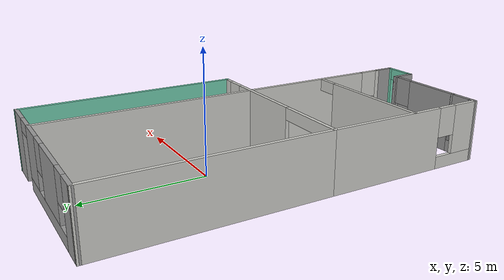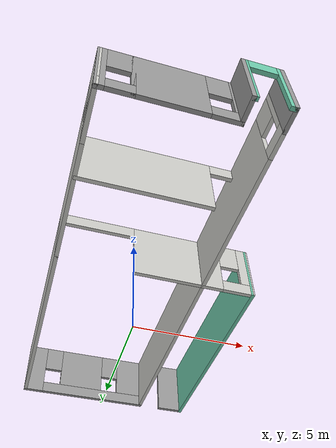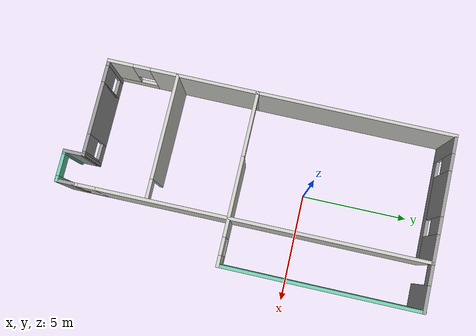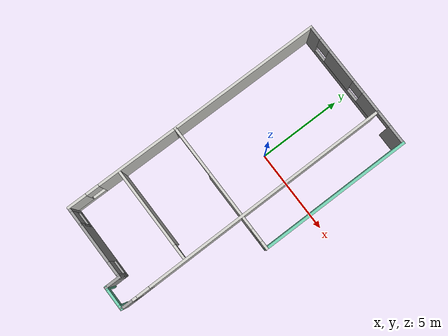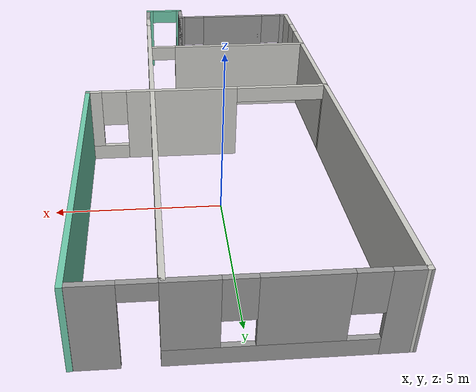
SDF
<?xml version='1.0'?>
<sdf version='1.6'>
  <model name='floor_plan'>
    <pose frame=''>0.139953 -2.45491 0 0 -0 0</pose>
    <link name='Wall_1'>
      <collision name='Wall_1_Collision'>
        <geometry>
          <box>
            <size>9.18001 0.15 2.5</size>
          </box>
        </geometry>
        <pose frame=''>0 0 1.25 0 -0 0</pose>
      </collision>
      <visual name='Wall_1_Visual'>
        <pose frame=''>0 0 1.25 0 -0 0</pose>
        <geometry>
          <box>
            <size>9.18001 0.15 2.5</size>
          </box>
        </geometry>
        <material>
          <script>
            <uri>file://media/materials/scripts/gazebo.material</uri>
            <name>Gazebo/CeilingTiled</name>
          </script>
          <ambient>1 1 1 1</ambient>
        </material>
        <meta>
          <layer>0</layer>
        </meta>
      </visual>
      <pose frame=''>-3.92495 3.8599 0 0 -0 1.5719</pose>
    </link>
    <link name='Wall_11'>
      <pose frame=''>-3.92495 -4.0901 0 0 0 -1.57225</pose>
      <visual name='Wall_11_Visual_0'>
        <pose frame=''>-0.997456 0 1.25 0 -0 0</pose>
        <geometry>
          <box>
            <size>5.0251 0.15 2.5</size>
          </box>
        </geometry>
        <material>
          <script>
            <uri>file://media/materials/scripts/gazebo.material</uri>
            <name>Gazebo/CeilingTiled</name>
          </script>
          <ambient>0.435294 0.796078 0.67451 1</ambient>
        </material>
        <meta>
          <layer>0</layer>
        </meta>
      </visual>
      <collision name='Wall_11_Collision_0'>
        <geometry>
          <box>
            <size>5.0251 0.15 2.5</size>
          </box>
        </geometry>
        <pose frame=''>-0.997456 0 1.25 0 -0 0</pose>
      </collision>
      <visual name='Wall_11_Visual_1'>
        <pose frame=''>2.51255 0 0.25 0 -0 0</pose>
        <geometry>
          <box>
            <size>1.99491 0.15 0.5</size>
          </box>
        </geometry>
        <material>
          <script>
            <uri>file://media/materials/scripts/gazebo.material</uri>
            <name>Gazebo/CeilingTiled</name>
          </script>
          <ambient>0.435294 0.796078 0.67451 1</ambient>
        </material>
        <meta>
          <layer>0</layer>
        </meta>
      </visual>
      <collision name='Wall_11_Collision_1'>
        <geometry>
          <box>
            <size>1.99491 0.15 0.5</size>
          </box>
        </geometry>
        <pose frame=''>2.51255 0 0.25 0 -0 0</pose>
      </collision>
      <visual name='Wall_11_Visual_2'>
        <pose frame=''>2.91255 0 1.5 0 -0 0</pose>
        <geometry>
          <box>
            <size>1.19491 0.15 2</size>
          </box>
        </geometry>
        <material>
          <script>
            <uri>file://media/materials/scripts/gazebo.material</uri>
            <name>Gazebo/CeilingTiled</name>
          </script>
          <ambient>0.435294 0.796078 0.67451 1</ambient>
        </material>
        <meta>
          <layer>0</layer>
        </meta>
      </visual>
      <collision name='Wall_11_Collision_2'>
        <geometry>
          <box>
            <size>1.19491 0.15 2</size>
          </box>
        </geometry>
        <pose frame=''>2.91255 0 1.5 0 -0 0</pose>
      </collision>
      <visual name='Wall_11_Visual_3'>
        <pose frame=''>1.91509 0 1.9 0 -0 0</pose>
        <geometry>
          <box>
            <size>0.8 0.15 1.2</size>
          </box>
        </geometry>
        <material>
          <script>
            <uri>file://media/materials/scripts/gazebo.material</uri>
            <name>Gazebo/CeilingTiled</name>
          </script>
          <ambient>0.435294 0.796078 0.67451 1</ambient>
        </material>
        <meta>
          <layer>0</layer>
        </meta>
      </visual>
      <collision name='Wall_11_Collision_3'>
        <geometry>
          <box>
            <size>0.8 0.15 1.2</size>
          </box>
        </geometry>
        <pose frame=''>1.91509 0 1.9 0 -0 0</pose>
      </collision>
    </link>
    <link name='Wall_24'>
      <pose frame=''>-3.37995 -7.5251 0 0 -0 0</pose>
      <visual name='Wall_24_Visual_0'>
        <pose frame=''>-0.4625 0 1.25 0 -0 0</pose>
        <geometry>
          <box>
            <size>0.325 0.15 2.5</size>
          </box>
        </geometry>
        <material>
          <script>
            <uri>file://media/materials/scripts/gazebo.material</uri>
            <name>Gazebo/Grey</name>
          </script>
          <ambient>1 1 1 1</ambient>
        </material>
        <meta>
          <layer>0</layer>
        </meta>
      </visual>
      <collision name='Wall_24_Collision_0'>
        <geometry>
          <box>
            <size>0.325 0.15 2.5</size>
          </box>
        </geometry>
        <pose frame=''>-0.4625 0 1.25 0 -0 0</pose>
      </collision>
      <visual name='Wall_24_Visual_1'>
        <pose frame=''>0.1625 0 0.25 0 -0 0</pose>
        <geometry>
          <box>
            <size>0.925 0.15 0.5</size>
          </box>
        </geometry>
        <material>
          <script>
            <uri>file://media/materials/scripts/gazebo.material</uri>
            <name>Gazebo/Grey</name>
          </script>
          <ambient>1 1 1 1</ambient>
        </material>
        <meta>
          <layer>0</layer>
        </meta>
      </visual>
      <collision name='Wall_24_Collision_1'>
        <geometry>
          <box>
            <size>0.925 0.15 0.5</size>
          </box>
        </geometry>
        <pose frame=''>0.1625 0 0.25 0 -0 0</pose>
      </collision>
      <visual name='Wall_24_Visual_2'>
        <pose frame=''>0.5625 0 1.5 0 -0 0</pose>
        <geometry>
          <box>
            <size>0.125 0.15 2</size>
          </box>
        </geometry>
        <material>
          <script>
            <uri>file://media/materials/scripts/gazebo.material</uri>
            <name>Gazebo/Grey</name>
          </script>
          <ambient>1 1 1 1</ambient>
        </material>
        <meta>
          <layer>0</layer>
        </meta>
      </visual>
      <collision name='Wall_24_Collision_2'>
        <geometry>
          <box>
            <size>0.125 0.15 2</size>
          </box>
        </geometry>
        <pose frame=''>0.5625 0 1.5 0 -0 0</pose>
      </collision>
      <visual name='Wall_24_Visual_3'>
        <pose frame=''>0.1 0 1.9 0 -0 0</pose>
        <geometry>
          <box>
            <size>0.8 0.15 1.2</size>
          </box>
        </geometry>
        <material>
          <script>
            <uri>file://media/materials/scripts/gazebo.material</uri>
            <name>Gazebo/Grey</name>
          </script>
          <ambient>1 1 1 1</ambient>
        </material>
        <meta>
          <layer>0</layer>
        </meta>
      </visual>
      <collision name='Wall_24_Collision_3'>
        <geometry>
          <box>
            <size>0.8 0.15 1.2</size>
          </box>
        </geometry>
        <pose frame=''>0.1 0 1.9 0 -0 0</pose>
      </collision>
    </link>
    <link name='Wall_27'>
      <pose frame=''>-1.15495 -7.5251 0 0 -0 0</pose>
      <visual name='Wall_27_Visual_0'>
        <pose frame=''>-0.5175 0 1.25 0 -0 0</pose>
        <geometry>
          <box>
            <size>2.465 0.15 2.5</size>
          </box>
        </geometry>
        <material>
          <script>
            <uri>file://media/materials/scripts/gazebo.material</uri>
            <name>Gazebo/Grey</name>
          </script>
          <ambient>1 1 1 1</ambient>
        </material>
        <meta>
          <layer>0</layer>
        </meta>
      </visual>
      <collision name='Wall_27_Collision_0'>
        <geometry>
          <box>
            <size>2.465 0.15 2.5</size>
          </box>
        </geometry>
        <pose frame=''>-0.5175 0 1.25 0 -0 0</pose>
      </collision>
      <visual name='Wall_27_Visual_1'>
        <pose frame=''>1.2325 0 0.25 0 -0 0</pose>
        <geometry>
          <box>
            <size>1.035 0.15 0.5</size>
          </box>
        </geometry>
        <material>
          <script>
            <uri>file://media/materials/scripts/gazebo.material</uri>
            <name>Gazebo/Grey</name>
          </script>
          <ambient>1 1 1 1</ambient>
        </material>
        <meta>
          <layer>0</layer>
        </meta>
      </visual>
      <collision name='Wall_27_Collision_1'>
        <geometry>
          <box>
            <size>1.035 0.15 0.5</size>
          </box>
        </geometry>
        <pose frame=''>1.2325 0 0.25 0 -0 0</pose>
      </collision>
      <visual name='Wall_27_Visual_2'>
        <pose frame=''>1.6325 0 1.5 0 -0 0</pose>
        <geometry>
          <box>
            <size>0.235 0.15 2</size>
          </box>
        </geometry>
        <material>
          <script>
            <uri>file://media/materials/scripts/gazebo.material</uri>
            <name>Gazebo/Grey</name>
          </script>
          <ambient>1 1 1 1</ambient>
        </material>
        <meta>
          <layer>0</layer>
        </meta>
      </visual>
      <collision name='Wall_27_Collision_2'>
        <geometry>
          <box>
            <size>0.235 0.15 2</size>
          </box>
        </geometry>
        <pose frame=''>1.6325 0 1.5 0 -0 0</pose>
      </collision>
      <visual name='Wall_27_Visual_3'>
        <pose frame=''>1.115 0 1.9 0 -0 0</pose>
        <geometry>
          <box>
            <size>0.8 0.15 1.2</size>
          </box>
        </geometry>
        <material>
          <script>
            <uri>file://media/materials/scripts/gazebo.material</uri>
            <name>Gazebo/Grey</name>
          </script>
          <ambient>1 1 1 1</ambient>
        </material>
        <meta>
          <layer>0</layer>
        </meta>
      </visual>
      <collision name='Wall_27_Collision_3'>
        <geometry>
          <box>
            <size>0.8 0.15 1.2</size>
          </box>
        </geometry>
        <pose frame=''>1.115 0 1.9 0 -0 0</pose>
      </collision>
    </link>
    <link name='Wall_28'>
      <collision name='Wall_28_Collision'>
        <geometry>
          <box>
            <size>1 0.15 2.5</size>
          </box>
        </geometry>
        <pose frame=''>0 0 1.25 0 -0 0</pose>
      </collision>
      <visual name='Wall_28_Visual'>
        <pose frame=''>0 0 1.25 0 -0 0</pose>
        <geometry>
          <box>
            <size>1 0.15 2.5</size>
          </box>
        </geometry>
        <material>
          <script>
            <uri>file://media/materials/scripts/gazebo.material</uri>
            <name>Gazebo/Grey</name>
          </script>
          <ambient>1 1 1 1</ambient>
        </material>
        <meta>
          <layer>0</layer>
        </meta>
      </visual>
      <pose frame=''>0.520047 -7.9501 0 0 0 -1.5708</pose>
    </link>
    <link name='Wall_29'>
      <pose frame=''>1.19505 -8.37509 0 0 -0 0</pose>
      <visual name='Wall_29_Visual_0'>
        <pose frame=''>-0.635 0 1.25 0 -0 0</pose>
        <geometry>
          <box>
            <size>0.23 0.15 2.5</size>
          </box>
        </geometry>
        <material>
          <script>
            <uri>file://media/materials/scripts/gazebo.material</uri>
            <name>Gazebo/Grey</name>
          </script>
          <ambient>0.435294 0.796078 0.67451 1</ambient>
        </material>
        <meta>
          <layer>0</layer>
        </meta>
      </visual>
      <collision name='Wall_29_Collision_0'>
        <geometry>
          <box>
            <size>0.23 0.15 2.5</size>
          </box>
        </geometry>
        <pose frame=''>-0.635 0 1.25 0 -0 0</pose>
      </collision>
      <visual name='Wall_29_Visual_1'>
        <pose frame=''>0.61 0 1.25 0 -0 0</pose>
        <geometry>
          <box>
            <size>0.28 0.15 2.5</size>
          </box>
        </geometry>
        <material>
          <script>
            <uri>file://media/materials/scripts/gazebo.material</uri>
            <name>Gazebo/Grey</name>
          </script>
          <ambient>0.435294 0.796078 0.67451 1</ambient>
        </material>
        <meta>
          <layer>0</layer>
        </meta>
      </visual>
      <collision name='Wall_29_Collision_1'>
        <geometry>
          <box>
            <size>0.28 0.15 2.5</size>
          </box>
        </geometry>
        <pose frame=''>0.61 0 1.25 0 -0 0</pose>
      </collision>
      <visual name='Wall_29_Visual_2'>
        <pose frame=''>-0.025 0 2.25 0 -0 0</pose>
        <geometry>
          <box>
            <size>0.99 0.15 0.5</size>
          </box>
        </geometry>
        <material>
          <script>
            <uri>file://media/materials/scripts/gazebo.material</uri>
            <name>Gazebo/Grey</name>
          </script>
          <ambient>0.435294 0.796078 0.67451 1</ambient>
        </material>
        <meta>
          <layer>0</layer>
        </meta>
      </visual>
      <collision name='Wall_29_Collision_2'>
        <geometry>
          <box>
            <size>0.99 0.15 0.5</size>
          </box>
        </geometry>
        <pose frame=''>-0.025 0 2.25 0 -0 0</pose>
      </collision>
    </link>
    <link name='Wall_3'>
      <pose frame=''>0.005047 -0.645095 0 0 -0 0</pose>
      <visual name='Wall_3_Visual_0'>
        <pose frame=''>-3.9325 0 1.25 0 -0 0</pose>
        <geometry>
          <box>
            <size>0.135 0.15 2.5</size>
          </box>
        </geometry>
        <material>
          <script>
            <uri>file://media/materials/scripts/gazebo.material</uri>
            <name>Gazebo/CeilingTiled</name>
          </script>
          <ambient>1 1 1 1</ambient>
        </material>
        <meta>
          <layer>0</layer>
        </meta>
      </visual>
      <collision name='Wall_3_Collision_0'>
        <geometry>
          <box>
            <size>0.135 0.15 2.5</size>
          </box>
        </geometry>
        <pose frame=''>-3.9325 0 1.25 0 -0 0</pose>
      </collision>
      <visual name='Wall_3_Visual_1'>
        <pose frame=''>0.855 0 1.25 0 -0 0</pose>
        <geometry>
          <box>
            <size>3.64 0.15 2.5</size>
          </box>
        </geometry>
        <material>
          <script>
            <uri>file://media/materials/scripts/gazebo.material</uri>
            <name>Gazebo/CeilingTiled</name>
          </script>
          <ambient>1 1 1 1</ambient>
        </material>
        <meta>
          <layer>0</layer>
        </meta>
      </visual>
      <collision name='Wall_3_Collision_1'>
        <geometry>
          <box>
            <size>3.64 0.15 2.5</size>
          </box>
        </geometry>
        <pose frame=''>0.855 0 1.25 0 -0 0</pose>
      </collision>
      <visual name='Wall_3_Visual_2'>
        <pose frame=''>3.3375 0 0.25 0 -0 0</pose>
        <geometry>
          <box>
            <size>1.325 0.15 0.5</size>
          </box>
        </geometry>
        <material>
          <script>
            <uri>file://media/materials/scripts/gazebo.material</uri>
            <name>Gazebo/CeilingTiled</name>
          </script>
          <ambient>1 1 1 1</ambient>
        </material>
        <meta>
          <layer>0</layer>
        </meta>
      </visual>
      <collision name='Wall_3_Collision_2'>
        <geometry>
          <box>
            <size>1.325 0.15 0.5</size>
          </box>
        </geometry>
        <pose frame=''>3.3375 0 0.25 0 -0 0</pose>
      </collision>
      <visual name='Wall_3_Visual_3'>
        <pose frame=''>3.7375 0 1.5 0 -0 0</pose>
        <geometry>
          <box>
            <size>0.525 0.15 2</size>
          </box>
        </geometry>
        <material>
          <script>
            <uri>file://media/materials/scripts/gazebo.material</uri>
            <name>Gazebo/CeilingTiled</name>
          </script>
          <ambient>1 1 1 1</ambient>
        </material>
        <meta>
          <layer>0</layer>
        </meta>
      </visual>
      <collision name='Wall_3_Collision_3'>
        <geometry>
          <box>
            <size>0.525 0.15 2</size>
          </box>
        </geometry>
        <pose frame=''>3.7375 0 1.5 0 -0 0</pose>
      </collision>
      <visual name='Wall_3_Visual_4'>
        <pose frame=''>3.075 0 1.9 0 -0 0</pose>
        <geometry>
          <box>
            <size>0.8 0.15 1.2</size>
          </box>
        </geometry>
        <material>
          <script>
            <uri>file://media/materials/scripts/gazebo.material</uri>
            <name>Gazebo/CeilingTiled</name>
          </script>
          <ambient>1 1 1 1</ambient>
        </material>
        <meta>
          <layer>0</layer>
        </meta>
      </visual>
      <collision name='Wall_3_Collision_4'>
        <geometry>
          <box>
            <size>0.8 0.15 1.2</size>
          </box>
        </geometry>
        <pose frame=''>3.075 0 1.9 0 -0 0</pose>
      </collision>
      <visual name='Wall_3_Visual_5'>
        <pose frame=''>-2.415 0 2.25 0 -0 0</pose>
        <geometry>
          <box>
            <size>2.9 0.15 0.5</size>
          </box>
        </geometry>
        <material>
          <script>
            <uri>file://media/materials/scripts/gazebo.material</uri>
            <name>Gazebo/CeilingTiled</name>
          </script>
          <ambient>1 1 1 1</ambient>
        </material>
        <meta>
          <layer>0</layer>
        </meta>
      </visual>
      <collision name='Wall_3_Collision_5'>
        <geometry>
          <box>
            <size>2.9 0.15 0.5</size>
          </box>
        </geometry>
        <pose frame=''>-2.415 0 2.25 0 -0 0</pose>
      </collision>
    </link>
    <link name='Wall_30'>
      <collision name='Wall_30_Collision'>
        <geometry>
          <box>
            <size>0.91 0.15 2.5</size>
          </box>
        </geometry>
        <pose frame=''>0 0 1.25 0 -0 0</pose>
      </collision>
      <visual name='Wall_30_Visual'>
        <pose frame=''>0 0 1.25 0 -0 0</pose>
        <geometry>
          <box>
            <size>0.91 0.15 2.5</size>
          </box>
        </geometry>
        <material>
          <script>
            <uri>file://media/materials/scripts/gazebo.material</uri>
            <name>Gazebo/Grey</name>
          </script>
          <ambient>1 1 1 1</ambient>
        </material>
        <meta>
          <layer>0</layer>
        </meta>
      </visual>
      <pose frame=''>1.87005 -7.9951 0 0 -0 1.5708</pose>
    </link>
    <link name='Wall_32'>
      <pose frame=''>-1.08995 -4.3251 0 0 -0 0</pose>
      <visual name='Wall_32_Visual_0'>
        <pose frame=''>-0.4375 0 1.25 0 -0 0</pose>
        <geometry>
          <box>
            <size>4.875 0.15 2.5</size>
          </box>
        </geometry>
        <material>
          <script>
            <uri>file://media/materials/scripts/gazebo.material</uri>
            <name>Gazebo/CeilingTiled</name>
          </script>
          <ambient>1 1 1 1</ambient>
        </material>
        <meta>
          <layer>0</layer>
        </meta>
      </visual>
      <collision name='Wall_32_Collision_0'>
        <geometry>
          <box>
            <size>4.875 0.15 2.5</size>
          </box>
        </geometry>
        <pose frame=''>-0.4375 0 1.25 0 -0 0</pose>
      </collision>
      <visual name='Wall_32_Visual_1'>
        <pose frame=''>2.4375 0 2.25 0 -0 0</pose>
        <geometry>
          <box>
            <size>0.875 0.15 0.5</size>
          </box>
        </geometry>
        <material>
          <script>
            <uri>file://media/materials/scripts/gazebo.material</uri>
            <name>Gazebo/CeilingTiled</name>
          </script>
          <ambient>1 1 1 1</ambient>
        </material>
        <meta>
          <layer>0</layer>
        </meta>
      </visual>
      <collision name='Wall_32_Collision_1'>
        <geometry>
          <box>
            <size>0.875 0.15 0.5</size>
          </box>
        </geometry>
        <pose frame=''>2.4375 0 2.25 0 -0 0</pose>
      </collision>
    </link>
    <link name='Wall_5'>
      <collision name='Wall_5_Collision'>
        <geometry>
          <box>
            <size>9.16001 0.15 2.5</size>
          </box>
        </geometry>
        <pose frame=''>0 0 1.25 0 -0 0</pose>
      </collision>
      <visual name='Wall_5_Visual'>
        <pose frame=''>0 0 1.25 0 -0 0</pose>
        <geometry>
          <box>
            <size>9.16001 0.15 2.5</size>
          </box>
        </geometry>
        <material>
          <script>
            <uri>file://media/materials/scripts/gazebo.material</uri>
            <name>Gazebo/Grey</name>
          </script>
          <ambient>0.435294 0.796078 0.67451 1</ambient>
        </material>
        <meta>
          <layer>0</layer>
        </meta>
      </visual>
      <pose frame=''>3.92505 3.8599 0 0 -0 1.57191</pose>
    </link>
    <link name='Wall_7'>
      <pose frame=''>-0.004953 8.3649 0 0 0 -0.002548</pose>
      <visual name='Wall_7_Visual_0'>
        <pose frame=''>-3.55751 0 1.25 0 -0 0</pose>
        <geometry>
          <box>
            <size>0.884983 0.15 2.5</size>
          </box>
        </geometry>
        <material>
          <script>
            <uri>file://media/materials/scripts/gazebo.material</uri>
            <name>Gazebo/Grey</name>
          </script>
          <ambient>1 1 1 1</ambient>
        </material>
        <meta>
          <layer>0</layer>
        </meta>
      </visual>
      <collision name='Wall_7_Collision_0'>
        <geometry>
          <box>
            <size>0.884983 0.15 2.5</size>
          </box>
        </geometry>
        <pose frame=''>-3.55751 0 1.25 0 -0 0</pose>
      </collision>
      <visual name='Wall_7_Visual_1'>
        <pose frame=''>3.3878 0 1.25 0 -0 0</pose>
        <geometry>
          <box>
            <size>1.2244 0.15 2.5</size>
          </box>
        </geometry>
        <material>
          <script>
            <uri>file://media/materials/scripts/gazebo.material</uri>
            <name>Gazebo/Grey</name>
          </script>
          <ambient>1 1 1 1</ambient>
        </material>
        <meta>
          <layer>0</layer>
        </meta>
      </visual>
      <collision name='Wall_7_Collision_1'>
        <geometry>
          <box>
            <size>1.2244 0.15 2.5</size>
          </box>
        </geometry>
        <pose frame=''>3.3878 0 1.25 0 -0 0</pose>
      </collision>
      <visual name='Wall_7_Visual_2'>
        <pose frame=''>-0.619706 0 0.25 0 -0 0</pose>
        <geometry>
          <box>
            <size>4.99062 0.15 0.5</size>
          </box>
        </geometry>
        <material>
          <script>
            <uri>file://media/materials/scripts/gazebo.material</uri>
            <name>Gazebo/Grey</name>
          </script>
          <ambient>1 1 1 1</ambient>
        </material>
        <meta>
          <layer>0</layer>
        </meta>
      </visual>
      <collision name='Wall_7_Collision_2'>
        <geometry>
          <box>
            <size>4.99062 0.15 0.5</size>
          </box>
        </geometry>
        <pose frame=''>-0.619706 0 0.25 0 -0 0</pose>
      </collision>
      <visual name='Wall_7_Visual_3'>
        <pose frame=''>-1.2851 0 1.5 0 -0 0</pose>
        <geometry>
          <box>
            <size>2.05984 0.15 2</size>
          </box>
        </geometry>
        <material>
          <script>
            <uri>file://media/materials/scripts/gazebo.material</uri>
            <name>Gazebo/Grey</name>
          </script>
          <ambient>1 1 1 1</ambient>
        </material>
        <meta>
          <layer>0</layer>
        </meta>
      </visual>
      <collision name='Wall_7_Collision_3'>
        <geometry>
          <box>
            <size>2.05984 0.15 2</size>
          </box>
        </geometry>
        <pose frame=''>-1.2851 0 1.5 0 -0 0</pose>
      </collision>
      <visual name='Wall_7_Visual_4'>
        <pose frame=''>1.21021 0 1.5 0 -0 0</pose>
        <geometry>
          <box>
            <size>1.33078 0.15 2</size>
          </box>
        </geometry>
        <material>
          <script>
            <uri>file://media/materials/scripts/gazebo.material</uri>
            <name>Gazebo/Grey</name>
          </script>
          <ambient>1 1 1 1</ambient>
        </material>
        <meta>
          <layer>0</layer>
        </meta>
      </visual>
      <collision name='Wall_7_Collision_4'>
        <geometry>
          <box>
            <size>1.33078 0.15 2</size>
          </box>
        </geometry>
        <pose frame=''>1.21021 0 1.5 0 -0 0</pose>
      </collision>
      <visual name='Wall_7_Visual_5'>
        <pose frame=''>-2.71502 0 1.9 0 -0 0</pose>
        <geometry>
          <box>
            <size>0.8 0.15 1.2</size>
          </box>
        </geometry>
        <material>
          <script>
            <uri>file://media/materials/scripts/gazebo.material</uri>
            <name>Gazebo/Grey</name>
          </script>
          <ambient>1 1 1 1</ambient>
        </material>
        <meta>
          <layer>0</layer>
        </meta>
      </visual>
      <collision name='Wall_7_Collision_5'>
        <geometry>
          <box>
            <size>0.8 0.15 1.2</size>
          </box>
        </geometry>
        <pose frame=''>-2.71502 0 1.9 0 -0 0</pose>
      </collision>
      <visual name='Wall_7_Visual_6'>
        <pose frame=''>0.144821 0 1.9 0 -0 0</pose>
        <geometry>
          <box>
            <size>0.8 0.15 1.2</size>
          </box>
        </geometry>
        <material>
          <script>
            <uri>file://media/materials/scripts/gazebo.material</uri>
            <name>Gazebo/Grey</name>
          </script>
          <ambient>1 1 1 1</ambient>
        </material>
        <meta>
          <layer>0</layer>
        </meta>
      </visual>
      <collision name='Wall_7_Collision_6'>
        <geometry>
          <box>
            <size>0.8 0.15 1.2</size>
          </box>
        </geometry>
        <pose frame=''>0.144821 0 1.9 0 -0 0</pose>
      </collision>
      <visual name='Wall_7_Visual_7'>
        <pose frame=''>2.3256 0 2.25 0 -0 0</pose>
        <geometry>
          <box>
            <size>0.9 0.15 0.5</size>
          </box>
        </geometry>
        <material>
          <script>
            <uri>file://media/materials/scripts/gazebo.material</uri>
            <name>Gazebo/Grey</name>
          </script>
          <ambient>1 1 1 1</ambient>
        </material>
        <meta>
          <layer>0</layer>
        </meta>
      </visual>
      <collision name='Wall_7_Collision_7'>
        <geometry>
          <box>
            <size>0.9 0.15 0.5</size>
          </box>
        </geometry>
        <pose frame=''>2.3256 0 2.25 0 -0 0</pose>
      </collision>
    </link>
    <link name='Wall_9'>
      <pose frame=''>1.83505 0.339905 0 0 0 -1.5664</pose>
      <visual name='Wall_9_Visual_0'>
        <pose frame=''>-0.537453 0 1.25 0 -0 0</pose>
        <geometry>
          <box>
            <size>14.9852 0.15 2.5</size>
          </box>
        </geometry>
        <material>
          <script>
            <uri>file://media/materials/scripts/gazebo.material</uri>
            <name>Gazebo/CeilingTiled</name>
          </script>
          <ambient>0.435294 0.796078 0.67451 1</ambient>
        </material>
        <meta>
          <layer>0</layer>
        </meta>
      </visual>
      <collision name='Wall_9_Collision_0'>
        <geometry>
          <box>
            <size>14.9852 0.15 2.5</size>
          </box>
        </geometry>
        <pose frame=''>-0.537453 0 1.25 0 -0 0</pose>
      </collision>
      <visual name='Wall_9_Visual_1'>
        <pose frame=''>7.49262 0 0.25 0 -0 0</pose>
        <geometry>
          <box>
            <size>1.07491 0.15 0.5</size>
          </box>
        </geometry>
        <material>
          <script>
            <uri>file://media/materials/scripts/gazebo.material</uri>
            <name>Gazebo/CeilingTiled</name>
          </script>
          <ambient>0.435294 0.796078 0.67451 1</ambient>
        </material>
        <meta>
          <layer>0</layer>
        </meta>
      </visual>
      <collision name='Wall_9_Collision_1'>
        <geometry>
          <box>
            <size>1.07491 0.15 0.5</size>
          </box>
        </geometry>
        <pose frame=''>7.49262 0 0.25 0 -0 0</pose>
      </collision>
      <visual name='Wall_9_Visual_2'>
        <pose frame=''>7.89262 0 1.5 0 -0 0</pose>
        <geometry>
          <box>
            <size>0.274906 0.15 2</size>
          </box>
        </geometry>
        <material>
          <script>
            <uri>file://media/materials/scripts/gazebo.material</uri>
            <name>Gazebo/CeilingTiled</name>
          </script>
          <ambient>0.435294 0.796078 0.67451 1</ambient>
        </material>
        <meta>
          <layer>0</layer>
        </meta>
      </visual>
      <collision name='Wall_9_Collision_2'>
        <geometry>
          <box>
            <size>0.274906 0.15 2</size>
          </box>
        </geometry>
        <pose frame=''>7.89262 0 1.5 0 -0 0</pose>
      </collision>
      <visual name='Wall_9_Visual_3'>
        <pose frame=''>7.35517 0 1.9 0 -0 0</pose>
        <geometry>
          <box>
            <size>0.8 0.15 1.2</size>
          </box>
        </geometry>
        <material>
          <script>
            <uri>file://media/materials/scripts/gazebo.material</uri>
            <name>Gazebo/CeilingTiled</name>
          </script>
          <ambient>0.435294 0.796078 0.67451 1</ambient>
        </material>
        <meta>
          <layer>0</layer>
        </meta>
      </visual>
      <collision name='Wall_9_Collision_3'>
        <geometry>
          <box>
            <size>0.8 0.15 1.2</size>
          </box>
        </geometry>
        <pose frame=''>7.35517 0 1.9 0 -0 0</pose>
      </collision>
    </link>
    <static>1</static>
  </model>
</sdf>
